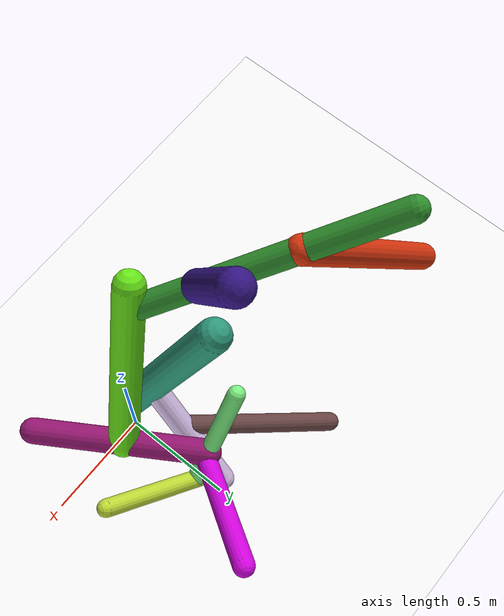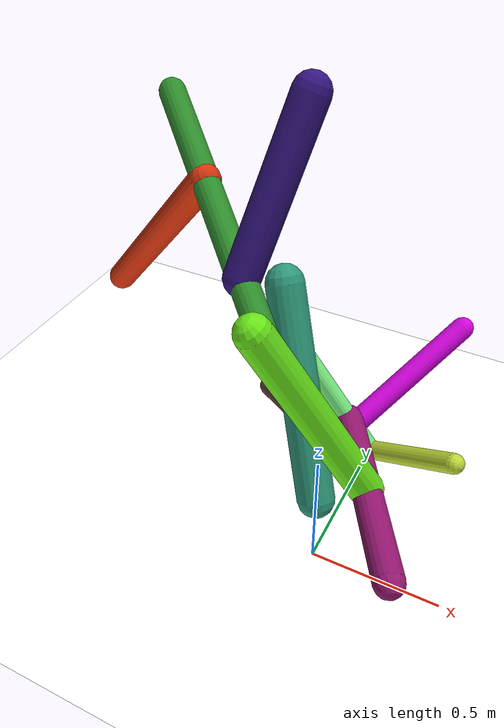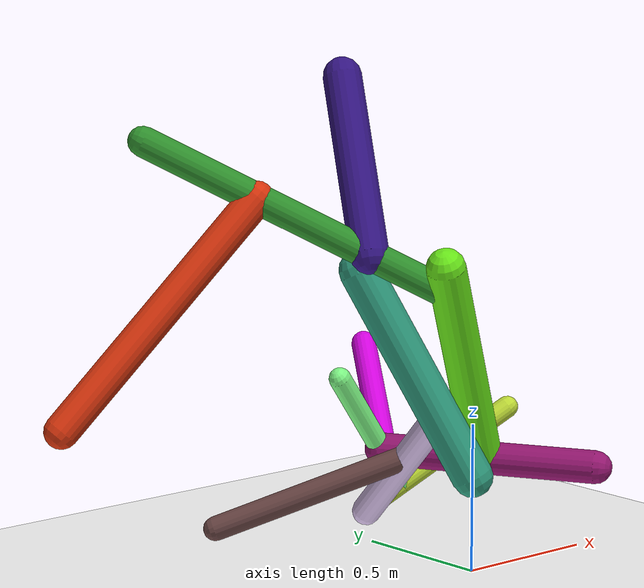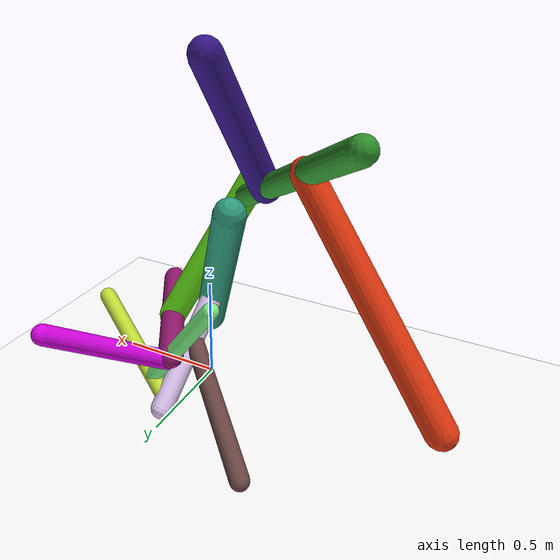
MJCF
<mujoco model="morphology">
  <option timestep="0.01"/>
  <default>
    <default class="/"/>
    <default class="0/"/>
    <default class="0/1/"/>
    <default class="0/1/2/"/>
    <default class="0/1/3/"/>
    <default class="0/1/3/4/"/>
    <default class="0/1/3/4/5/"/>
    <default class="0/1/3/4/6/"/>
    <default class="0/1/3/4/6/7/"/>
    <default class="0/1/3/4/6/7/8/"/>
    <default class="0/1/3/4/6/7/8/9/"/>
    <default class="0/1/3/4/6/7/8/10/"/>
  </default>
  <asset>
    <texture name="texplane" type="2d" builtin="checker" rgb1="0.10000000000000001 0.20000000000000001 0.29999999999999999" rgb2="0.20000000000000001 0.29999999999999999 0.40000000000000002" width="300" height="300"/>
    <material name="MatPlane" class="/" texture="texplane" texrepeat="20 20" specular="1" shininess="1" reflectance="0.5"/>
  </asset>
  <worldbody>
    <light name="//unnamed_light_0" class="/" directional="true" pos="0 0 1.5" dir="0 0 -1.3" cutoff="100" exponent="1" diffuse="1 1 1" specular="0.10000000000000001 0.10000000000000001 0.10000000000000001"/>
    <geom name="ground" class="/" type="plane" size="15 15 0.5" material="MatPlane" rgba="1 1 1 1"/>
    <site name="body" class="/" size="9.9999999999999995e-07 9.9999999999999995e-07 9.9999999999999995e-07" pos="0 0 0.32391599416732786"/>
    <body pos="0 0 0.32391599416732786" name="0/">
      <freejoint name="0/"/>
      <geom name="0/geom" class="0/" type="capsule" contype="1" conaffinity="1" condim="3" size="0.069765900752657262" rgba="0.184350316346654 0.60961188301291636 0.49255527213952965 1" friction="0.59999999999999998 0.10000000000000001 0.10000000000000001" fromto="0 0 0 -0.26321544138971786 0.26755436786356812 0.68857971364350767"/>
      <site name="0/end0" class="0/" size="0.0050000000000000001" pos="-0.26321544138971786 0.26755436786356812 0.68857971364350767"/>
      <site name="0/attach1" class="0/" size="9.9999999999999995e-07 9.9999999999999995e-07 9.9999999999999995e-07" pos="-0.077974408889305777 0.079259763674064426 0.20398345880105093"/>
      <body pos="-0.077974408889305777 0.079259763674064426 0.20398345880105093" name="0/1/">
        <geom name="0/1/geom" class="0/1/" type="capsule" contype="1" conaffinity="1" condim="3" size="0.049829201838657758" rgba="0.88024476005169638 0.78641042067125244 0.95790139737396962 1" friction="0.59999999999999998 0.10000000000000001 0.10000000000000001" fromto="0 0 0 0.044978518891339858 0.41162515071731187 -0.41156439318652044"/>
        <site name="0/1/end1" class="0/1/" size="0.0050000000000000001" pos="0.044978518891339858 0.41162515071731187 -0.41156439318652044"/>
        <site name="0/1/attach2" class="0/1/" size="9.9999999999999995e-07 9.9999999999999995e-07 9.9999999999999995e-07" pos="0.018741304651520612 0.17151281416041814 -0.17148749817797801"/>
        <body pos="0.018741304651520612 0.17151281416041814 -0.17148749817797801" name="0/1/2/">
          <geom name="0/1/2/geom" class="0/1/2/" type="capsule" contype="1" conaffinity="1" condim="3" size="0.042107109544325366" rgba="0.41248520964877944 0.27322385550461847 0.26780949476781468 1" friction="0.59999999999999998 0.10000000000000001 0.10000000000000001" fromto="0 0 0 -0.4767947379320947 0.44222551609425453 -0.25641195923961935"/>
          <site name="0/1/2/end2" class="0/1/2/" size="0.0050000000000000001" pos="-0.4767947379320947 0.44222551609425453 -0.25641195923961935"/>
        </body>
        <site name="0/1/attach3" class="0/1/" size="9.9999999999999995e-07 9.9999999999999995e-07 9.9999999999999995e-07" pos="0.041625637511610594 0.38094094107042514 -0.38088471265261231"/>
        <body pos="0.041625637511610594 0.38094094107042514 -0.38088471265261231" name="0/1/3/">
          <joint name="0/1/3/joint/" class="0/1/" type="hinge" axis="-0.99702784770301756 0.054480946526136942 -0.054472904918911713" limited="true" range="-51.304479927854345 51.304479927854345"/>
          <geom name="0/1/3/geom" class="0/1/3/" type="capsule" contype="1" conaffinity="1" condim="3" size="0.037958966775473398" rgba="0.75623334685673471 0.86683020592428717 0.21536533506172828 1" friction="0.59999999999999998 0.10000000000000001 0.10000000000000001" fromto="0 0 0 0.44777051585455863 -0.20048480259671475 0.30972945104092964"/>
          <site name="0/1/3/end3" class="0/1/3/" size="0.0050000000000000001" pos="0.44777051585455863 -0.20048480259671475 0.30972945104092964"/>
          <site name="0/1/3/attach4" class="0/1/3/" size="9.9999999999999995e-07 9.9999999999999995e-07 9.9999999999999995e-07" pos="0.096211147820520593 -0.043077586163948488 0.066550665895444519"/>
          <body pos="0.096211147820520593 -0.043077586163948488 0.066550665895444519" name="0/1/3/4/">
            <joint name="0/1/3/4/joint/" class="0/1/3/" type="hinge" axis="-5.5511151231257827e-17 0.83948159945054146 0.54338811560795208" limited="true" range="-31.243762465144236 31.243762465144236"/>
            <geom name="0/1/3/4/geom" class="0/1/3/4/" type="capsule" contype="1" conaffinity="1" condim="3" size="0.037927691831871328" rgba="0.49638503873298589 0.9723803799413907 0.52315247380229568 1" friction="0.59999999999999998 0.10000000000000001 0.10000000000000001" fromto="0 0 0 -0.2991582923437805 -0.023849516741121013 0.41199329397535611"/>
            <site name="0/1/3/4/end4" class="0/1/3/4/" size="0.0050000000000000001" pos="-0.2991582923437805 -0.023849516741121013 0.41199329397535611"/>
            <site name="0/1/3/4/attach5" class="0/1/3/4/" size="9.9999999999999995e-07 9.9999999999999995e-07 9.9999999999999995e-07" pos="-0.079396864967282169 -0.0063296820067875615 0.10934337027033507"/>
            <body pos="-0.079396864967282169 -0.0063296820067875615 0.10934337027033507" name="0/1/3/4/5/">
              <joint name="0/1/3/4/5/joint/" class="0/1/3/4/" type="hinge" axis="0.80964484117383895 -0.033918917620931785 0.58593919325132471" limited="true" range="-57.221671451683555 57.221671451683555"/>
              <geom name="0/1/3/4/5/geom" class="0/1/3/4/5/" type="capsule" contype="1" conaffinity="1" condim="3" size="0.044198420625902061" rgba="0.84890225808479469 0.014326993266353227 0.8942758510396156 1" friction="0.59999999999999998 0.10000000000000001 0.10000000000000001" fromto="0 0 0 0.27685428049331628 0.42351453394499505 0.29082491035044233"/>
              <site name="0/1/3/4/5/end5" class="0/1/3/4/5/" size="0.0050000000000000001" pos="0.27685428049331628 0.42351453394499505 0.29082491035044233"/>
            </body>
            <site name="0/1/3/4/attach6" class="0/1/3/4/" size="9.9999999999999995e-07 9.9999999999999995e-07 9.9999999999999995e-07" pos="-0.099140688197747531 -0.0079037003600130867 0.13653406822711758"/>
            <body pos="-0.099140688197747531 -0.0079037003600130867 0.13653406822711758" name="0/1/3/4/6/">
              <joint name="0/1/3/4/6/joint/" class="0/1/3/4/" type="hinge" axis="0.80964484117383895 -0.033918917620931785 0.58593919325132471" limited="true" range="-51.084620116767425 51.084620116767425"/>
              <geom name="0/1/3/4/6/geom" class="0/1/3/4/6/" type="capsule" contype="1" conaffinity="1" condim="3" size="0.056033099392046273" rgba="0.58868106357992567 0.090246220407706912 0.44524446843201393 1" friction="0.59999999999999998 0.10000000000000001 0.10000000000000001" fromto="0 0 0 0.39335298083321746 -0.63114336459613141 -0.0098304199423828731"/>
              <site name="0/1/3/4/6/end6" class="0/1/3/4/6/" size="0.0050000000000000001" pos="0.39335298083321746 -0.63114336459613141 -0.0098304199423828731"/>
              <site name="0/1/3/4/6/attach7" class="0/1/3/4/6/" size="9.9999999999999995e-07 9.9999999999999995e-07 9.9999999999999995e-07" pos="0.18920634571928485 -0.3035856735781064 -0.0047285210099192844"/>
              <body pos="0.18920634571928485 -0.3035856735781064 -0.0047285210099192844" name="0/1/3/4/6/7/">
                <joint name="0/1/3/4/6/7/joint/" class="0/1/3/4/6/" type="hinge" axis="0.84869821299579318 0.52881329613139161 0.0082365704270910695" limited="true" range="-37.380157567140436 37.380157567140436"/>
                <geom name="0/1/3/4/6/7/geom" class="0/1/3/4/6/7/" type="capsule" contype="1" conaffinity="1" condim="3" size="0.065187416526431952" rgba="0.41526471926602426 0.9134265898025159 0.096881543846764728 1" friction="0.59999999999999998 0.10000000000000001 0.10000000000000001" fromto="0 0 0 -0.35249678515922989 -0.18635021798432216 0.71297385725741425"/>
                <site name="0/1/3/4/6/7/end7" class="0/1/3/4/6/7/" size="0.0050000000000000001" pos="-0.35249678515922989 -0.18635021798432216 0.71297385725741425"/>
                <site name="0/1/3/4/6/7/attach8" class="0/1/3/4/6/7/" size="9.9999999999999995e-07 9.9999999999999995e-07 9.9999999999999995e-07" pos="-0.3036707199842929 -0.16053793182529763 0.61421633807393694"/>
                <body pos="-0.3036707199842929 -0.16053793182529763 0.61421633807393694" name="0/1/3/4/6/7/8/">
                  <joint name="0/1/3/4/6/7/8/joint/" class="0/1/3/4/6/7/" type="hinge" axis="-5.5511151231257827e-17 0.96749882874896309 0.25287549578672974" limited="true" range="-65.076184018248597 65.076184018248597"/>
                  <geom name="0/1/3/4/6/7/8/geom" class="0/1/3/4/6/7/8/" type="capsule" contype="1" conaffinity="1" condim="3" size="0.050354075246417239" rgba="0.18600972973576324 0.56668576979276941 0.17842304507138063 1" friction="0.59999999999999998 0.10000000000000001 0.10000000000000001" fromto="0 0 0 -0.73370256050123972 0.66230378682650293 0.49691804622792901"/>
                  <site name="0/1/3/4/6/7/8/end8" class="0/1/3/4/6/7/8/" size="0.0050000000000000001" pos="-0.73370256050123972 0.66230378682650293 0.49691804622792901"/>
                  <site name="0/1/3/4/6/7/8/attach9" class="0/1/3/4/6/7/8/" size="9.9999999999999995e-07 9.9999999999999995e-07 9.9999999999999995e-07" pos="-0.19589637311617883 0.17683311565900356 0.13267562120203955"/>
                  <body pos="-0.19589637311617883 0.17683311565900356 0.13267562120203955" name="0/1/3/4/6/7/8/9/">
                    <joint name="0/1/3/4/6/7/8/9/joint/" class="0/1/3/4/6/7/8/" type="hinge" axis="-0.74843716293089602 -0.53049143013107358 -0.39802092369803793" limited="true" range="-36.120899115587484 36.120899115587484"/>
                    <geom name="0/1/3/4/6/7/8/9/geom" class="0/1/3/4/6/7/8/9/" type="capsule" contype="1" conaffinity="1" condim="3" size="0.064395392014818822" rgba="0.20820946868242374 0.086263105427700659 0.52170659321278778 1" friction="0.59999999999999998 0.10000000000000001 0.10000000000000001" fromto="0 0 0 0.11060380282120008 0.2602348431901722 0.54602120051196579"/>
                    <site name="0/1/3/4/6/7/8/9/end9" class="0/1/3/4/6/7/8/9/" size="0.0050000000000000001" pos="0.11060380282120008 0.2602348431901722 0.54602120051196579"/>
                  </body>
                  <site name="0/1/3/4/6/7/8/attach10" class="0/1/3/4/6/7/8/" size="9.9999999999999995e-07 9.9999999999999995e-07 9.9999999999999995e-07" pos="-0.46460537790140888 0.41939324970304726 0.314665382244317"/>
                  <body pos="-0.46460537790140888 0.41939324970304726 0.314665382244317" name="0/1/3/4/6/7/8/10/">
                    <joint name="0/1/3/4/6/7/8/10/joint/" class="0/1/3/4/6/7/8/" type="hinge" axis="-0.74843716293089602 -0.53049143013107358 -0.39802092369803793" limited="true" range="-67.085135789882216 67.085135789882216"/>
                    <geom name="0/1/3/4/6/7/8/10/geom" class="0/1/3/4/6/7/8/10/" type="capsule" contype="1" conaffinity="1" condim="3" size="0.057381664038971131" rgba="0.86316491314155253 0.21361672805933662 0.057099024525578357 1" friction="0.59999999999999998 0.10000000000000001 0.10000000000000001" fromto="0 0 0 -0.61267126989789711 0.23620599782780616 -0.71558747379508869"/>
                    <site name="0/1/3/4/6/7/8/10/end10" class="0/1/3/4/6/7/8/10/" size="0.0050000000000000001" pos="-0.61267126989789711 0.23620599782780616 -0.71558747379508869"/>
                  </body>
                </body>
              </body>
            </body>
          </body>
        </body>
      </body>
      <camera name="0/iso" class="0/" mode="trackcom" pos="-2.2999999999999998 -2.2999999999999998 1" xyaxes="0.45000000000000001 -0.45000000000000001 0 0.29999999999999999 0.14999999999999999 0.93999999999999995"/>
    </body>
  </worldbody>
  <actuator>
    <motor name="0/1/3/motor" class="0/1/3/" ctrllimited="true" ctrlrange="-1 1" gear="51" joint="0/1/3/joint/"/>
    <motor name="0/1/3/4/motor" class="0/1/3/4/" ctrllimited="true" ctrlrange="-1 1" gear="57" joint="0/1/3/4/joint/"/>
    <motor name="0/1/3/4/5/motor" class="0/1/3/4/5/" ctrllimited="true" ctrlrange="-1 1" gear="54" joint="0/1/3/4/5/joint/"/>
    <motor name="0/1/3/4/6/motor" class="0/1/3/4/6/" ctrllimited="true" ctrlrange="-1 1" gear="86" joint="0/1/3/4/6/joint/"/>
    <motor name="0/1/3/4/6/7/motor" class="0/1/3/4/6/7/" ctrllimited="true" ctrlrange="-1 1" gear="81" joint="0/1/3/4/6/7/joint/"/>
    <motor name="0/1/3/4/6/7/8/motor" class="0/1/3/4/6/7/8/" ctrllimited="true" ctrlrange="-1 1" gear="90" joint="0/1/3/4/6/7/8/joint/"/>
    <motor name="0/1/3/4/6/7/8/9/motor" class="0/1/3/4/6/7/8/9/" ctrllimited="true" ctrlrange="-1 1" gear="76" joint="0/1/3/4/6/7/8/9/joint/"/>
    <motor name="0/1/3/4/6/7/8/10/motor" class="0/1/3/4/6/7/8/10/" ctrllimited="true" ctrlrange="-1 1" gear="65" joint="0/1/3/4/6/7/8/10/joint/"/>
  </actuator>
  <sensor>
    <subtreelinvel name="velocity" body="0/"/>
  </sensor>
</mujoco>
